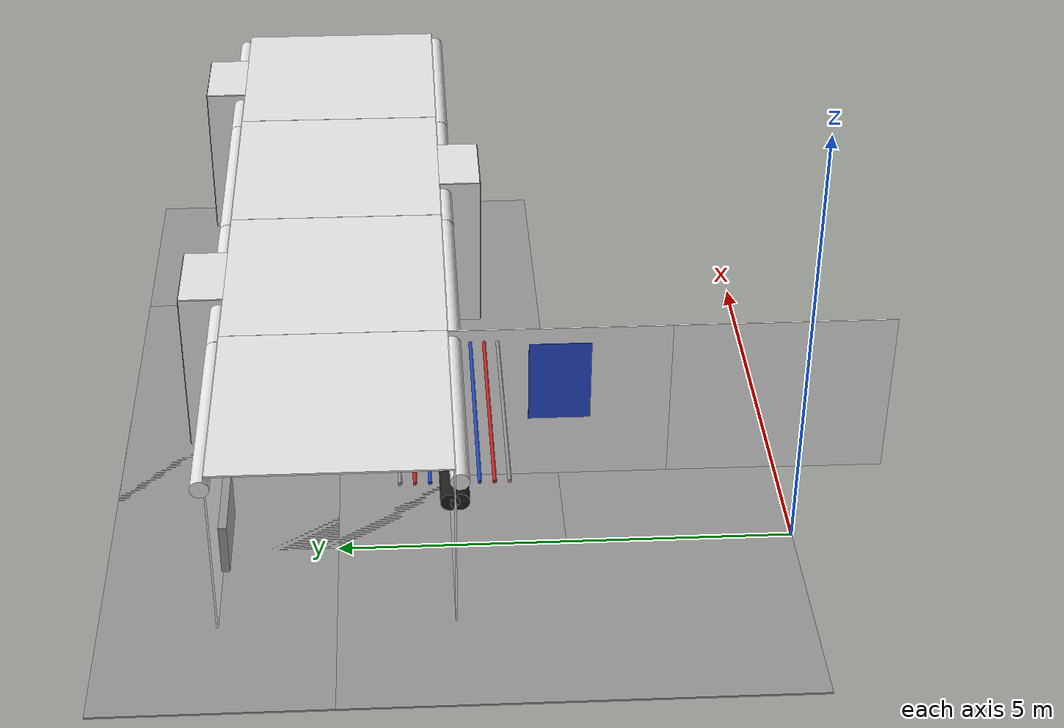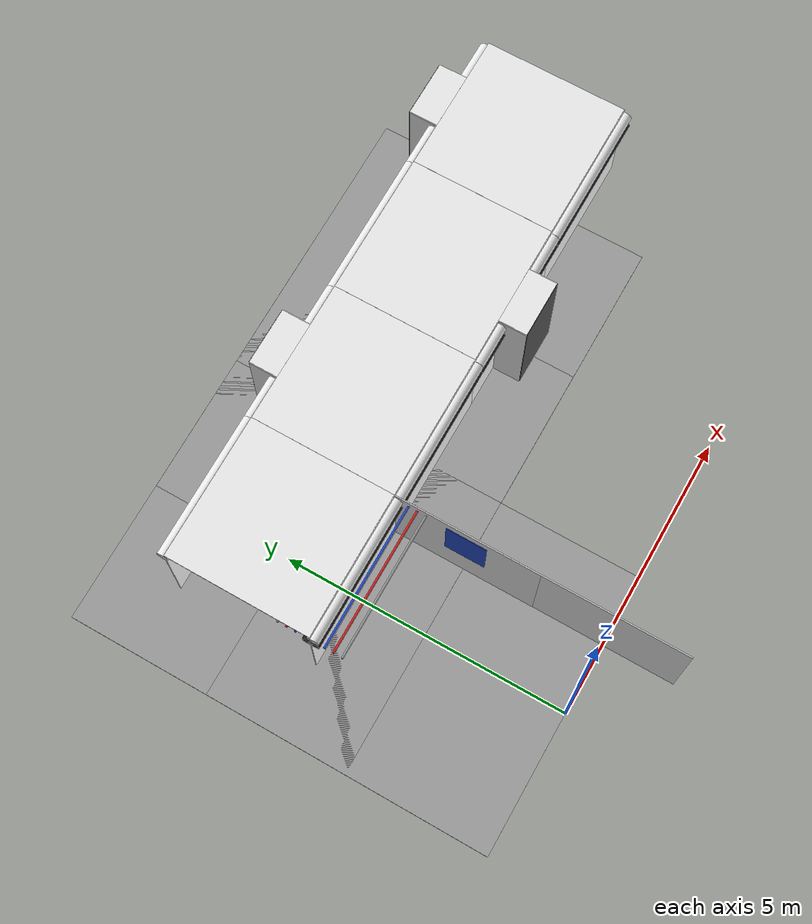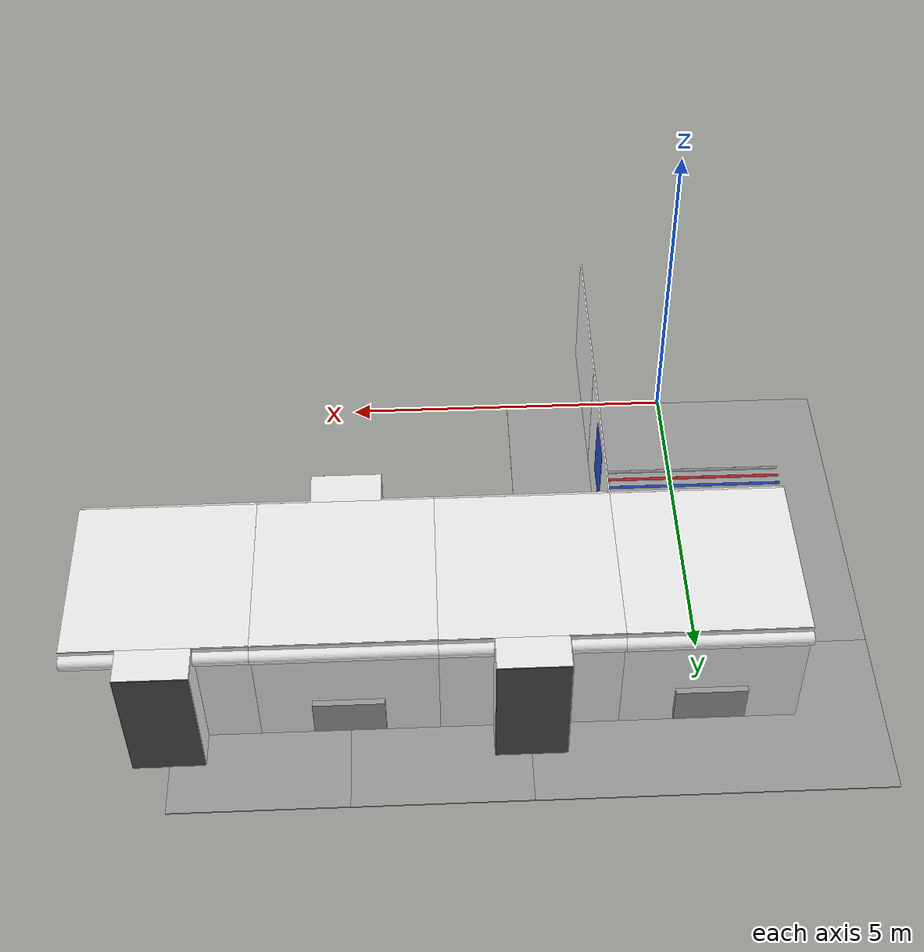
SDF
<sdf version="1.6">
 <world name="default">
  <model name="wall_right_0_0_0_0">
   <static>1</static>
   <pose>1.25 0.0 1.0 0.0 0.0 1.57</pose>
   <link name="link">
    <collision name="collision"><geometry><box><size>2.5 0.02 2.0</size></box></geometry></collision>
    <visual name="visual">
     <material>
      <script><name>Gazebo/White</name><uri>file://media/materials/scripts/gazebo.material</uri></script>
     </material>
     <geometry><box><size>2.5 0.02 2.0</size></box></geometry>
    </visual>
   </link>
  </model>
  <model name="wall_right_0_1_0_3">
   <static>1</static>
   <pose>1.25 2.5 1.0 0.0 0.0 1.57</pose>
   <link name="link">
    <collision name="collision"><geometry><box><size>2.5 0.02 2.0</size></box></geometry></collision>
    <visual name="visual">
     <material>
      <script><name>Gazebo/White</name><uri>file://media/materials/scripts/gazebo.material</uri></script>
     </material>
     <geometry><box><size>2.5 0.02 2.0</size></box></geometry>
    </visual>
   </link>
  </model>
  <model name="black_pipe_right_1_0_1_0_3">
   <static>1</static>
   <pose>0.0 2.5 1.84 0.0 0.0 1.57</pose>
   <link name="link_0">
    <visual name="visual">
     <pose>1.3 0 -0.25 1.57 0 0</pose>
     <geometry><cylinder><radius>0.1</radius><length>2.5</length></cylinder></geometry>
     <material>
      <script><uri>file://media/materials/scripts/gazebo.material</uri><name>Gazebo/Black</name></script>
     </material>
    </visual>
    <collision name="collision">
     <pose>1.3 0 -0.25 1.57 0 0</pose>
     <geometry><cylinder><radius>0.1</radius><length>2.5</length></cylinder></geometry>
    </collision>
   </link>
  </model>
  <model name="grey_pipe_right_1_0_1_0_3">
   <static>1</static>
   <pose>0.0 2.5 1.84 0.0 0.0 1.57</pose>
   <link name="link_0">
    <visual name="visual">
     <pose>0.7 0 0 1.57 0 0</pose>
     <geometry><cylinder><radius>0.02</radius><length>2.5</length></cylinder></geometry>
     <material>
      <script><uri>file://media/materials/scripts/gazebo.material</uri><name>Gazebo/Grey</name></script>
     </material>
    </visual>
    <collision name="collision">
     <pose>0.7 0 0 1.57 0 0</pose>
     <geometry><cylinder><radius>0.02</radius><length>2.5</length></cylinder></geometry>
    </collision>
   </link>
  </model>
  <model name="red_pipe_right_1_0_1_0_3">
   <static>1</static>
   <pose>0.0 2.5 1.84 0.0 0.0 1.57</pose>
   <link name="link_0">
    <visual name="visual">
     <pose>0.85 0 0 1.57 0 0</pose>
     <geometry><cylinder><radius>0.02</radius><length>2.5</length></cylinder></geometry>
     <material>
      <script><uri>file://media/materials/scripts/gazebo.material</uri><name>Gazebo/Red</name></script>
     </material>
    </visual>
    <collision name="collision">
     <pose>0.85 0 0 1.57 0 0</pose>
     <geometry><cylinder><radius>0.02</radius><length>2.5</length></cylinder></geometry>
    </collision>
   </link>
  </model>
  <model name="blue_pipe_right_1_0_1_0_3">
   <static>1</static>
   <pose>0.0 2.5 1.84 0.0 0.0 1.57</pose>
   <link name="link_0">
    <visual name="visual">
     <pose>1 0 0 1.57 0 0</pose>
     <geometry><cylinder><radius>0.02</radius><length>2.5</length></cylinder></geometry>
     <material>
      <script><uri>file://media/materials/scripts/gazebo.material</uri><name>Gazebo/Blue</name></script>
     </material>
    </visual>
    <collision name="collision">
     <pose>1 0 0 1.57 0 0</pose>
     <geometry><cylinder><radius>0.02</radius><length>2.5</length></cylinder></geometry>
    </collision>
   </link>
  </model>
  <model name="panel_0_1_0_3">
   <static>1</static>
   <pose>1.25 2.5 1.3 0.0 0.0 0.0</pose>
   <link name="link">
    <collision name="collision"><geometry><box><size>0.04 0.7 1</size></box></geometry></collision>
    <visual name="visual">
     <material>
      <script><name>Gazebo/Blue</name><uri>file://media/materials/scripts/gazebo.material</uri></script>
     </material>
     <geometry><box><size>0.04 0.7 1</size></box></geometry>
    </visual>
   </link>
  </model>
  <model name="wall_bottom_0_1_0_3">
   <static>1</static>
   <pose>0.0 2.5 0.0 0.0 0.0 0.0</pose>
   <link name="link">
    <collision name="collision"><geometry><box><size>5.0 5.0 0.02</size></box></geometry></collision>
    <visual name="visual">
     <material>
      <script><name>Gazebo/Grey</name><uri>file://media/materials/scripts/gazebo.material</uri></script>
     </material>
     <geometry><box><size>5.0 5.0 0.02</size></box></geometry>
    </visual>
   </link>
  </model>
  <model name="wall_right_0_2_0_1">
   <static>1</static>
   <pose>0.0 3.75 1.0 0.0 0.0 0.0</pose>
   <link name="link">
    <collision name="collision"><geometry><box><size>2.5 0.02 2.0</size></box></geometry></collision>
    <visual name="visual">
     <material>
      <script><name>Gazebo/White</name><uri>file://media/materials/scripts/gazebo.material</uri></script>
     </material>
     <geometry><box><size>2.5 0.02 2.0</size></box></geometry>
    </visual>
   </link>
  </model>
  <model name="wall_left_0_2_0_1">
   <static>1</static>
   <pose>0.0 6.25 1.0 0.0 0.0 0.0</pose>
   <link name="link">
    <collision name="collision"><geometry><box><size>2.5 0.02 2.0</size></box></geometry></collision>
    <visual name="visual">
     <material>
      <script><name>Gazebo/White</name><uri>file://media/materials/scripts/gazebo.material</uri></script>
     </material>
     <geometry><box><size>2.5 0.02 2.0</size></box></geometry>
    </visual>
   </link>
  </model>
  <model name="wall_top_0_2_0_1">
   <static>1</static>
   <pose>0.0 5.0 2.0 1.57 0.0 -1.57</pose>
   <link name="link">
    <collision name="collision"><geometry><box><size>2.5 0.02 2.5</size></box></geometry></collision>
    <visual name="visual">
     <material>
      <script><name>Gazebo/White</name><uri>file://media/materials/scripts/gazebo.material</uri></script>
     </material>
     <geometry><box><size>2.5 0.02 2.5</size></box></geometry>
    </visual>
   </link>
  </model>
  <model name="ceiling_1_0_2_0_1">
   <pose>0.0 5.0 1.7 0.0 0.0 -1.57</pose>
   <link name="link_1">
    <visual name="visual">
     <geometry><box><size>0.8 1 0.1</size></box></geometry>
     <material>
      <script><uri>file://media/materials/scripts/gazebo.material</uri><name>Gazebo/Grey</name></script>
     </material>
    </visual>
    <collision name="collision"><geometry><box><size>0.8 1 0.1</size></box></geometry></collision>
   </link>
   <static>1</static>
  </model>
  <model name="ceiling_1_0_2_2_1">
   <pose>1.0 5.0 1.7 0.0 0.0 -1.57</pose>
   <link name="link_1">
    <visual name="visual">
     <geometry><box><size>0.8 1 0.1</size></box></geometry>
     <material>
      <script><uri>file://media/materials/scripts/gazebo.material</uri><name>Gazebo/Grey</name></script>
     </material>
    </visual>
    <collision name="collision"><geometry><box><size>0.8 1 0.1</size></box></geometry></collision>
   </link>
   <static>1</static>
  </model>
  <model name="white_pipe_left_0_2_0_1">
   <static>1</static>
   <pose>0.0 5.0 1.84 0.0 0.0 -1.57</pose>
   <link name="link_0">
    <visual name="visual">
     <pose>-1.3 0 0 1.57 0 0</pose>
     <geometry><cylinder><radius>0.1</radius><length>2.5</length></cylinder></geometry>
     <material>
      <script><uri>file://media/materials/scripts/gazebo.material</uri><name>Gazebo/White</name></script>
     </material>
    </visual>
    <collision name="collision">
     <pose>-1.3 0 0 1.57 0 0</pose>
     <geometry><cylinder><radius>0.1</radius><length>2.5</length></cylinder></geometry>
    </collision>
   </link>
  </model>
  <model name="white_pipe_right_0_2_0_1">
   <static>1</static>
   <pose>0.0 5.0 1.84 0.0 0.0 -1.57</pose>
   <link name="link_0">
    <visual name="visual">
     <pose>1.3 0 0 1.57 0 0</pose>
     <geometry><cylinder><radius>0.1</radius><length>2.5</length></cylinder></geometry>
     <material>
      <script><uri>file://media/materials/scripts/gazebo.material</uri><name>Gazebo/White</name></script>
     </material>
    </visual>
    <collision name="collision">
     <pose>1.3 0 0 1.57 0 0</pose>
     <geometry><cylinder><radius>0.1</radius><length>2.5</length></cylinder></geometry>
    </collision>
   </link>
  </model>
  <model name="black_pipe_right_0_2_0_1">
   <static>1</static>
   <pose>0.0 5.0 1.84 0.0 0.0 -1.57</pose>
   <link name="link_0">
    <visual name="visual">
     <pose>1.3 0 -0.25 1.57 0 0</pose>
     <geometry><cylinder><radius>0.1</radius><length>2.5</length></cylinder></geometry>
     <material>
      <script><uri>file://media/materials/scripts/gazebo.material</uri><name>Gazebo/Black</name></script>
     </material>
    </visual>
    <collision name="collision">
     <pose>1.3 0 -0.25 1.57 0 0</pose>
     <geometry><cylinder><radius>0.1</radius><length>2.5</length></cylinder></geometry>
    </collision>
   </link>
  </model>
  <model name="grey_pipe_right_0_2_0_1">
   <static>1</static>
   <pose>0.0 5.0 1.84 0.0 0.0 -1.57</pose>
   <link name="link_0">
    <visual name="visual">
     <pose>0.7 0 0 1.57 0 0</pose>
     <geometry><cylinder><radius>0.02</radius><length>2.5</length></cylinder></geometry>
     <material>
      <script><uri>file://media/materials/scripts/gazebo.material</uri><name>Gazebo/Grey</name></script>
     </material>
    </visual>
    <collision name="collision">
     <pose>0.7 0 0 1.57 0 0</pose>
     <geometry><cylinder><radius>0.02</radius><length>2.5</length></cylinder></geometry>
    </collision>
   </link>
  </model>
  <model name="red_pipe_right_0_2_0_1">
   <static>1</static>
   <pose>0.0 5.0 1.84 0.0 0.0 -1.57</pose>
   <link name="link_0">
    <visual name="visual">
     <pose>0.85 0 0 1.57 0 0</pose>
     <geometry><cylinder><radius>0.02</radius><length>2.5</length></cylinder></geometry>
     <material>
      <script><uri>file://media/materials/scripts/gazebo.material</uri><name>Gazebo/Red</name></script>
     </material>
    </visual>
    <collision name="collision">
     <pose>0.85 0 0 1.57 0 0</pose>
     <geometry><cylinder><radius>0.02</radius><length>2.5</length></cylinder></geometry>
    </collision>
   </link>
  </model>
  <model name="blue_pipe_right_0_2_0_1">
   <static>1</static>
   <pose>0.0 5.0 1.84 0.0 0.0 -1.57</pose>
   <link name="link_0">
    <visual name="visual">
     <pose>1 0 0 1.57 0 0</pose>
     <geometry><cylinder><radius>0.02</radius><length>2.5</length></cylinder></geometry>
     <material>
      <script><uri>file://media/materials/scripts/gazebo.material</uri><name>Gazebo/Blue</name></script>
     </material>
    </visual>
    <collision name="collision">
     <pose>1 0 0 1.57 0 0</pose>
     <geometry><cylinder><radius>0.02</radius><length>2.5</length></cylinder></geometry>
    </collision>
   </link>
  </model>
  <model name="wall_bottom_0_2_0_1">
   <static>1</static>
   <pose>0.0 5.0 0.0 0.0 0.0 -1.57</pose>
   <link name="link">
    <collision name="collision"><geometry><box><size>5.0 5.0 0.02</size></box></geometry></collision>
    <visual name="visual">
     <material>
      <script><name>Gazebo/Grey</name><uri>file://media/materials/scripts/gazebo.material</uri></script>
     </material>
     <geometry><box><size>5.0 5.0 0.02</size></box></geometry>
    </visual>
   </link>
  </model>
  <model name="panel_0_2_0_1">
   <static>1</static>
   <pose>0.0 6.25 0.44 0.0 0.0 -1.57</pose>
   <link name="link">
    <collision name="collision"><geometry><box><size>0.2 1 0.6</size></box></geometry></collision>
    <visual name="visual">
     <material>
      <script><name>Gazebo/Grey</name><uri>file://media/materials/scripts/gazebo.material</uri></script>
     </material>
     <geometry><box><size>0.2 1 0.6</size></box></geometry>
    </visual>
   </link>
  </model>
  <model name="panel_0_2_1_1">
   <static>1</static>
   <pose>0.0 3.75 1.3 0.0 0.0 -1.57</pose>
   <link name="link">
    <collision name="collision"><geometry><box><size>0.04 0.7 1</size></box></geometry></collision>
    <visual name="visual">
     <material>
      <script><name>Gazebo/Blue</name><uri>file://media/materials/scripts/gazebo.material</uri></script>
     </material>
     <geometry><box><size>0.04 0.7 1</size></box></geometry>
    </visual>
   </link>
  </model>
  <model name="wall_right_1_2_0_1">
   <static>1</static>
   <pose>2.5 3.75 1.0 0.0 0.0 0.0</pose>
   <link name="link">
    <collision name="collision"><geometry><box><size>2.5 0.02 2.0</size></box></geometry></collision>
    <visual name="visual">
     <material>
      <script><name>Gazebo/White</name><uri>file://media/materials/scripts/gazebo.material</uri></script>
     </material>
     <geometry><box><size>2.5 0.02 2.0</size></box></geometry>
    </visual>
   </link>
  </model>
  <model name="wall_top_1_2_0_1">
   <static>1</static>
   <pose>2.5 5.0 2.0 1.57 0.0 -1.57</pose>
   <link name="link">
    <collision name="collision"><geometry><box><size>2.5 0.02 2.5</size></box></geometry></collision>
    <visual name="visual">
     <material>
      <script><name>Gazebo/White</name><uri>file://media/materials/scripts/gazebo.material</uri></script>
     </material>
     <geometry><box><size>2.5 0.02 2.5</size></box></geometry>
    </visual>
   </link>
  </model>
  <model name="ceiling_1_1_2_0_1">
   <pose>2.5 5.0 1.7 0.0 0.0 -1.57</pose>
   <link name="link_1">
    <visual name="visual">
     <geometry><box><size>0.8 1 0.1</size></box></geometry>
     <material>
      <script><uri>file://media/materials/scripts/gazebo.material</uri><name>Gazebo/Grey</name></script>
     </material>
    </visual>
    <collision name="collision"><geometry><box><size>0.8 1 0.1</size></box></geometry></collision>
   </link>
   <static>1</static>
  </model>
  <model name="ceiling_1_1_2_1_1">
   <pose>1.5 5.0 1.7 0.0 0.0 -1.57</pose>
   <link name="link_1">
    <visual name="visual">
     <geometry><box><size>0.8 1 0.1</size></box></geometry>
     <material>
      <script><uri>file://media/materials/scripts/gazebo.material</uri><name>Gazebo/Grey</name></script>
     </material>
    </visual>
    <collision name="collision"><geometry><box><size>0.8 1 0.1</size></box></geometry></collision>
   </link>
   <static>1</static>
  </model>
  <model name="ceiling_1_1_2_2_1">
   <pose>3.5 5.0 1.7 0.0 0.0 -1.57</pose>
   <link name="link_1">
    <visual name="visual">
     <geometry><box><size>0.8 1 0.1</size></box></geometry>
     <material>
      <script><uri>file://media/materials/scripts/gazebo.material</uri><name>Gazebo/Grey</name></script>
     </material>
    </visual>
    <collision name="collision"><geometry><box><size>0.8 1 0.1</size></box></geometry></collision>
   </link>
   <static>1</static>
  </model>
  <model name="white_pipe_left_1_2_0_1">
   <static>1</static>
   <pose>2.5 5.0 1.84 0.0 0.0 -1.57</pose>
   <link name="link_0">
    <visual name="visual">
     <pose>-1.3 0 0 1.57 0 0</pose>
     <geometry><cylinder><radius>0.1</radius><length>2.5</length></cylinder></geometry>
     <material>
      <script><uri>file://media/materials/scripts/gazebo.material</uri><name>Gazebo/White</name></script>
     </material>
    </visual>
    <collision name="collision">
     <pose>-1.3 0 0 1.57 0 0</pose>
     <geometry><cylinder><radius>0.1</radius><length>2.5</length></cylinder></geometry>
    </collision>
   </link>
  </model>
  <model name="white_pipe_right_1_2_0_1">
   <static>1</static>
   <pose>2.5 5.0 1.84 0.0 0.0 -1.57</pose>
   <link name="link_0">
    <visual name="visual">
     <pose>1.3 0 0 1.57 0 0</pose>
     <geometry><cylinder><radius>0.1</radius><length>2.5</length></cylinder></geometry>
     <material>
      <script><uri>file://media/materials/scripts/gazebo.material</uri><name>Gazebo/White</name></script>
     </material>
    </visual>
    <collision name="collision">
     <pose>1.3 0 0 1.57 0 0</pose>
     <geometry><cylinder><radius>0.1</radius><length>2.5</length></cylinder></geometry>
    </collision>
   </link>
  </model>
  <model name="black_pipe_right_1_2_0_1">
   <static>1</static>
   <pose>2.5 5.0 1.84 0.0 0.0 -1.57</pose>
   <link name="link_0">
    <visual name="visual">
     <pose>1.3 0 -0.25 1.57 0 0</pose>
     <geometry><cylinder><radius>0.1</radius><length>2.5</length></cylinder></geometry>
     <material>
      <script><uri>file://media/materials/scripts/gazebo.material</uri><name>Gazebo/Black</name></script>
     </material>
    </visual>
    <collision name="collision">
     <pose>1.3 0 -0.25 1.57 0 0</pose>
     <geometry><cylinder><radius>0.1</radius><length>2.5</length></cylinder></geometry>
    </collision>
   </link>
  </model>
  <model name="grey_pipe_right_1_2_0_1">
   <static>1</static>
   <pose>2.5 5.0 1.84 0.0 0.0 -1.57</pose>
   <link name="link_0">
    <visual name="visual">
     <pose>0.7 0 0 1.57 0 0</pose>
     <geometry><cylinder><radius>0.02</radius><length>2.5</length></cylinder></geometry>
     <material>
      <script><uri>file://media/materials/scripts/gazebo.material</uri><name>Gazebo/Grey</name></script>
     </material>
    </visual>
    <collision name="collision">
     <pose>0.7 0 0 1.57 0 0</pose>
     <geometry><cylinder><radius>0.02</radius><length>2.5</length></cylinder></geometry>
    </collision>
   </link>
  </model>
  <model name="red_pipe_right_1_2_0_1">
   <static>1</static>
   <pose>2.5 5.0 1.84 0.0 0.0 -1.57</pose>
   <link name="link_0">
    <visual name="visual">
     <pose>0.85 0 0 1.57 0 0</pose>
     <geometry><cylinder><radius>0.02</radius><length>2.5</length></cylinder></geometry>
     <material>
      <script><uri>file://media/materials/scripts/gazebo.material</uri><name>Gazebo/Red</name></script>
     </material>
    </visual>
    <collision name="collision">
     <pose>0.85 0 0 1.57 0 0</pose>
     <geometry><cylinder><radius>0.02</radius><length>2.5</length></cylinder></geometry>
    </collision>
   </link>
  </model>
  <model name="blue_pipe_right_1_2_0_1">
   <static>1</static>
   <pose>2.5 5.0 1.84 0.0 0.0 -1.57</pose>
   <link name="link_0">
    <visual name="visual">
     <pose>1 0 0 1.57 0 0</pose>
     <geometry><cylinder><radius>0.02</radius><length>2.5</length></cylinder></geometry>
     <material>
      <script><uri>file://media/materials/scripts/gazebo.material</uri><name>Gazebo/Blue</name></script>
     </material>
    </visual>
    <collision name="collision">
     <pose>1 0 0 1.57 0 0</pose>
     <geometry><cylinder><radius>0.02</radius><length>2.5</length></cylinder></geometry>
    </collision>
   </link>
  </model>
  <model name="wall_left_front_left_1_2_0_1">
   <static>1</static>
   <pose>3.375 6.25 1.0 0.0 0.0 0.0</pose>
   <link name="link">
    <collision name="collision"><geometry><box><size>0.75 0.02 2.0</size></box></geometry></collision>
    <visual name="visual">
     <material>
      <script><name>Gazebo/White</name><uri>file://media/materials/scripts/gazebo.material</uri></script>
     </material>
     <geometry><box><size>0.75 0.02 2.0</size></box></geometry>
    </visual>
   </link>
  </model>
  <model name="wall_left_front_right_1_2_0_1">
   <static>1</static>
   <pose>1.625 6.25 1.0 0.0 0.0 0.0</pose>
   <link name="link">
    <collision name="collision"><geometry><box><size>0.75 0.02 2.0</size></box></geometry></collision>
    <visual name="visual">
     <material>
      <script><name>Gazebo/White</name><uri>file://media/materials/scripts/gazebo.material</uri></script>
     </material>
     <geometry><box><size>0.75 0.02 2.0</size></box></geometry>
    </visual>
   </link>
  </model>
  <model name="wall_left_front_up_1_2_0_1">
   <static>1</static>
   <pose>2.5 6.25 2.0 0.0 0.0 0.0</pose>
   <link name="link">
    <collision name="collision"><geometry><box><size>1.0 0.02 0.001</size></box></geometry></collision>
    <visual name="visual">
     <material>
      <script><name>Gazebo/White</name><uri>file://media/materials/scripts/gazebo.material</uri></script>
     </material>
     <geometry><box><size>1.0 0.02 0.001</size></box></geometry>
    </visual>
   </link>
  </model>
  <model name="wall_left_inside_back_1_2_0_1">
   <static>1</static>
   <pose>2.5 6.75 1.0 0.0 0.0 0.0</pose>
   <link name="link">
    <collision name="collision"><geometry><box><size>1 0.02 2</size></box></geometry></collision>
    <visual name="visual">
     <material>
      <script><name>Gazebo/DarkGrey</name><uri>file://media/materials/scripts/gazebo.material</uri></script>
     </material>
     <geometry><box><size>1 0.02 2</size></box></geometry>
    </visual>
   </link>
  </model>
  <model name="wall_left_inside_left_1_2_0_1">
   <static>1</static>
   <pose>3.0 6.5 1.0 0.0 0.0 -1.57</pose>
   <link name="link">
    <collision name="collision"><geometry><box><size>0.5 0.02 2</size></box></geometry></collision>
    <visual name="visual">
     <material>
      <script><name>Gazebo/White</name><uri>file://media/materials/scripts/gazebo.material</uri></script>
     </material>
     <geometry><box><size>0.5 0.02 2</size></box></geometry>
    </visual>
   </link>
  </model>
  <model name="wall_left_inside_right_1_2_0_1">
   <static>1</static>
   <pose>2.0 6.5 1.0 0.0 0.0 -1.57</pose>
   <link name="link">
    <collision name="collision"><geometry><box><size>0.5 0.02 2</size></box></geometry></collision>
    <visual name="visual">
     <material>
      <script><name>Gazebo/White</name><uri>file://media/materials/scripts/gazebo.material</uri></script>
     </material>
     <geometry><box><size>0.5 0.02 2</size></box></geometry>
    </visual>
   </link>
  </model>
  <model name="wall_left_inside_top_1_2_0_1">
   <static>1</static>
   <pose>2.5 6.5 2.0 1.57 0.0 0.0</pose>
   <link name="link">
    <collision name="collision"><geometry><box><size>1 0.02 0.5</size></box></geometry></collision>
    <visual name="visual">
     <material>
      <script><name>Gazebo/White</name><uri>file://media/materials/scripts/gazebo.material</uri></script>
     </material>
     <geometry><box><size>1 0.02 0.5</size></box></geometry>
    </visual>
   </link>
  </model>
  <model name="wall_bottom_1_2_0_1">
   <static>1</static>
   <pose>2.5 5.0 0.0 0.0 0.0 -1.57</pose>
   <link name="link">
    <collision name="collision"><geometry><box><size>5.0 5.0 0.02</size></box></geometry></collision>
    <visual name="visual">
     <material>
      <script><name>Gazebo/Grey</name><uri>file://media/materials/scripts/gazebo.material</uri></script>
     </material>
     <geometry><box><size>5.0 5.0 0.02</size></box></geometry>
    </visual>
   </link>
  </model>
  <model name="wall_left_2_2_0_1">
   <static>1</static>
   <pose>5.0 6.25 1.0 0.0 0.0 0.0</pose>
   <link name="link">
    <collision name="collision"><geometry><box><size>2.5 0.02 2.0</size></box></geometry></collision>
    <visual name="visual">
     <material>
      <script><name>Gazebo/White</name><uri>file://media/materials/scripts/gazebo.material</uri></script>
     </material>
     <geometry><box><size>2.5 0.02 2.0</size></box></geometry>
    </visual>
   </link>
  </model>
  <model name="wall_top_2_2_0_1">
   <static>1</static>
   <pose>5.0 5.0 2.0 1.57 0.0 -1.57</pose>
   <link name="link">
    <collision name="collision"><geometry><box><size>2.5 0.02 2.5</size></box></geometry></collision>
    <visual name="visual">
     <material>
      <script><name>Gazebo/White</name><uri>file://media/materials/scripts/gazebo.material</uri></script>
     </material>
     <geometry><box><size>2.5 0.02 2.5</size></box></geometry>
    </visual>
   </link>
  </model>
  <model name="ceiling_1_2_2_0_1">
   <pose>5.0 5.0 1.7 0.0 0.0 -1.57</pose>
   <link name="link_1">
    <visual name="visual">
     <geometry><box><size>0.8 1 0.1</size></box></geometry>
     <material>
      <script><uri>file://media/materials/scripts/gazebo.material</uri><name>Gazebo/Grey</name></script>
     </material>
    </visual>
    <collision name="collision"><geometry><box><size>0.8 1 0.1</size></box></geometry></collision>
   </link>
   <static>1</static>
  </model>
  <model name="ceiling_1_2_2_1_1">
   <pose>4.0 5.0 1.7 0.0 0.0 -1.57</pose>
   <link name="link_1">
    <visual name="visual">
     <geometry><box><size>0.8 1 0.1</size></box></geometry>
     <material>
      <script><uri>file://media/materials/scripts/gazebo.material</uri><name>Gazebo/Grey</name></script>
     </material>
    </visual>
    <collision name="collision"><geometry><box><size>0.8 1 0.1</size></box></geometry></collision>
   </link>
   <static>1</static>
  </model>
  <model name="ceiling_1_2_2_2_1">
   <pose>6.0 5.0 1.7 0.0 0.0 -1.57</pose>
   <link name="link_1">
    <visual name="visual">
     <geometry><box><size>0.8 1 0.1</size></box></geometry>
     <material>
      <script><uri>file://media/materials/scripts/gazebo.material</uri><name>Gazebo/Grey</name></script>
     </material>
    </visual>
    <collision name="collision"><geometry><box><size>0.8 1 0.1</size></box></geometry></collision>
   </link>
   <static>1</static>
  </model>
  <model name="white_pipe_left_2_2_0_1">
   <static>1</static>
   <pose>5.0 5.0 1.84 0.0 0.0 -1.57</pose>
   <link name="link_0">
    <visual name="visual">
     <pose>-1.3 0 0 1.57 0 0</pose>
     <geometry><cylinder><radius>0.1</radius><length>2.5</length></cylinder></geometry>
     <material>
      <script><uri>file://media/materials/scripts/gazebo.material</uri><name>Gazebo/White</name></script>
     </material>
    </visual>
    <collision name="collision">
     <pose>-1.3 0 0 1.57 0 0</pose>
     <geometry><cylinder><radius>0.1</radius><length>2.5</length></cylinder></geometry>
    </collision>
   </link>
  </model>
  <model name="white_pipe_right_2_2_0_1">
   <static>1</static>
   <pose>5.0 5.0 1.84 0.0 0.0 -1.57</pose>
   <link name="link_0">
    <visual name="visual">
     <pose>1.3 0 0 1.57 0 0</pose>
     <geometry><cylinder><radius>0.1</radius><length>2.5</length></cylinder></geometry>
     <material>
      <script><uri>file://media/materials/scripts/gazebo.material</uri><name>Gazebo/White</name></script>
     </material>
    </visual>
    <collision name="collision">
     <pose>1.3 0 0 1.57 0 0</pose>
     <geometry><cylinder><radius>0.1</radius><length>2.5</length></cylinder></geometry>
    </collision>
   </link>
  </model>
  <model name="black_pipe_right_2_2_0_1">
   <static>1</static>
   <pose>5.0 5.0 1.84 0.0 0.0 -1.57</pose>
   <link name="link_0">
    <visual name="visual">
     <pose>1.3 0 -0.25 1.57 0 0</pose>
     <geometry><cylinder><radius>0.1</radius><length>2.5</length></cylinder></geometry>
     <material>
      <script><uri>file://media/materials/scripts/gazebo.material</uri><name>Gazebo/Black</name></script>
     </material>
    </visual>
    <collision name="collision">
     <pose>1.3 0 -0.25 1.57 0 0</pose>
     <geometry><cylinder><radius>0.1</radius><length>2.5</length></cylinder></geometry>
    </collision>
   </link>
  </model>
  <model name="grey_pipe_right_2_2_0_1">
   <static>1</static>
   <pose>5.0 5.0 1.84 0.0 0.0 -1.57</pose>
   <link name="link_0">
    <visual name="visual">
     <pose>0.7 0 0 1.57 0 0</pose>
     <geometry><cylinder><radius>0.02</radius><length>2.5</length></cylinder></geometry>
     <material>
      <script><uri>file://media/materials/scripts/gazebo.material</uri><name>Gazebo/Grey</name></script>
     </material>
    </visual>
    <collision name="collision">
     <pose>0.7 0 0 1.57 0 0</pose>
     <geometry><cylinder><radius>0.02</radius><length>2.5</length></cylinder></geometry>
    </collision>
   </link>
  </model>
  <model name="red_pipe_right_2_2_0_1">
   <static>1</static>
   <pose>5.0 5.0 1.84 0.0 0.0 -1.57</pose>
   <link name="link_0">
    <visual name="visual">
     <pose>0.85 0 0 1.57 0 0</pose>
     <geometry><cylinder><radius>0.02</radius><length>2.5</length></cylinder></geometry>
     <material>
      <script><uri>file://media/materials/scripts/gazebo.material</uri><name>Gazebo/Red</name></script>
     </material>
    </visual>
    <collision name="collision">
     <pose>0.85 0 0 1.57 0 0</pose>
     <geometry><cylinder><radius>0.02</radius><length>2.5</length></cylinder></geometry>
    </collision>
   </link>
  </model>
  <model name="blue_pipe_right_2_2_0_1">
   <static>1</static>
   <pose>5.0 5.0 1.84 0.0 0.0 -1.57</pose>
   <link name="link_0">
    <visual name="visual">
     <pose>1 0 0 1.57 0 0</pose>
     <geometry><cylinder><radius>0.02</radius><length>2.5</length></cylinder></geometry>
     <material>
      <script><uri>file://media/materials/scripts/gazebo.material</uri><name>Gazebo/Blue</name></script>
     </material>
    </visual>
    <collision name="collision">
     <pose>1 0 0 1.57 0 0</pose>
     <geometry><cylinder><radius>0.02</radius><length>2.5</length></cylinder></geometry>
    </collision>
   </link>
  </model>
  <model name="wall_bottom_2_2_0_1">
   <static>1</static>
   <pose>5.0 5.0 0.0 0.0 0.0 -1.57</pose>
   <link name="link">
    <collision name="collision"><geometry><box><size>5.0 5.0 0.02</size></box></geometry></collision>
    <visual name="visual">
     <material>
      <script><name>Gazebo/Grey</name><uri>file://media/materials/scripts/gazebo.material</uri></script>
     </material>
     <geometry><box><size>5.0 5.0 0.02</size></box></geometry>
    </visual>
   </link>
  </model>
  <model name="wall_right_front_left_2_2_0_1">
   <static>1</static>
   <pose>5.875 3.75 1.0 0.0 0.0 0.0</pose>
   <link name="link">
    <collision name="collision"><geometry><box><size>0.75 0.02 2.0</size></box></geometry></collision>
    <visual name="visual">
     <material>
      <script><name>Gazebo/White</name><uri>file://media/materials/scripts/gazebo.material</uri></script>
     </material>
     <geometry><box><size>0.75 0.02 2.0</size></box></geometry>
    </visual>
   </link>
  </model>
  <model name="wall_right_front_right_2_2_0_1">
   <static>1</static>
   <pose>4.125 3.75 1.0 0.0 0.0 0.0</pose>
   <link name="link">
    <collision name="collision"><geometry><box><size>0.75 0.02 2.0</size></box></geometry></collision>
    <visual name="visual">
     <material>
      <script><name>Gazebo/White</name><uri>file://media/materials/scripts/gazebo.material</uri></script>
     </material>
     <geometry><box><size>0.75 0.02 2.0</size></box></geometry>
    </visual>
   </link>
  </model>
  <model name="wall_right_front_up_2_2_0_1">
   <static>1</static>
   <pose>5.0 3.75 2.0 0.0 0.0 0.0</pose>
   <link name="link">
    <collision name="collision"><geometry><box><size>1.0 0.02 0.001</size></box></geometry></collision>
    <visual name="visual">
     <material>
      <script><name>Gazebo/White</name><uri>file://media/materials/scripts/gazebo.material</uri></script>
     </material>
     <geometry><box><size>1.0 0.02 0.001</size></box></geometry>
    </visual>
   </link>
  </model>
  <model name="wall_right_inside_back_2_2_0_1">
   <static>1</static>
   <pose>5.0 3.25 1.0 0.0 0.0 0.0</pose>
   <link name="link">
    <collision name="collision"><geometry><box><size>1 0.02 2</size></box></geometry></collision>
    <visual name="visual">
     <material>
      <script><name>Gazebo/DarkGrey</name><uri>file://media/materials/scripts/gazebo.material</uri></script>
     </material>
     <geometry><box><size>1 0.02 2</size></box></geometry>
    </visual>
   </link>
  </model>
  <model name="wall_right_inside_left_2_2_0_1">
   <static>1</static>
   <pose>5.5 3.5 1.0 0.0 0.0 -1.57</pose>
   <link name="link">
    <collision name="collision"><geometry><box><size>0.5 0.02 2</size></box></geometry></collision>
    <visual name="visual">
     <material>
      <script><name>Gazebo/White</name><uri>file://media/materials/scripts/gazebo.material</uri></script>
     </material>
     <geometry><box><size>0.5 0.02 2</size></box></geometry>
    </visual>
   </link>
  </model>
  <model name="wall_right_inside_right_2_2_0_1">
   <static>1</static>
   <pose>4.5 3.5 1.0 0.0 0.0 -1.57</pose>
   <link name="link">
    <collision name="collision"><geometry><box><size>0.5 0.02 2</size></box></geometry></collision>
    <visual name="visual">
     <material>
      <script><name>Gazebo/White</name><uri>file://media/materials/scripts/gazebo.material</uri></script>
     </material>
     <geometry><box><size>0.5 0.02 2</size></box></geometry>
    </visual>
   </link>
  </model>
  <model name="wall_right_inside_top_2_2_0_1">
   <static>1</static>
   <pose>5.0 3.5 2.0 1.57 0.0 0.0</pose>
   <link name="link">
    <collision name="collision"><geometry><box><size>1 0.02 0.5</size></box></geometry></collision>
    <visual name="visual">
     <material>
      <script><name>Gazebo/White</name><uri>file://media/materials/scripts/gazebo.material</uri></script>
     </material>
     <geometry><box><size>1 0.02 0.5</size></box></geometry>
    </visual>
   </link>
  </model>
  <model name="panel_2_2_0_1">
   <static>1</static>
   <pose>5.0 6.25 0.44 0.0 0.0 -1.57</pose>
   <link name="link">
    <collision name="collision"><geometry><box><size>0.2 1 0.6</size></box></geometry></collision>
    <visual name="visual">
     <material>
      <script><name>Gazebo/Grey</name><uri>file://media/materials/scripts/gazebo.material</uri></script>
     </material>
     <geometry><box><size>0.2 1 0.6</size></box></geometry>
    </visual>
   </link>
  </model>
  <model name="wall_right_3_2_0_1">
   <static>1</static>
   <pose>7.5 3.75 1.0 0.0 0.0 0.0</pose>
   <link name="link">
    <collision name="collision"><geometry><box><size>2.5 0.02 2.0</size></box></geometry></collision>
    <visual name="visual">
     <material>
      <script><name>Gazebo/White</name><uri>file://media/materials/scripts/gazebo.material</uri></script>
     </material>
     <geometry><box><size>2.5 0.02 2.0</size></box></geometry>
    </visual>
   </link>
  </model>
  <model name="wall_top_3_2_0_1">
   <static>1</static>
   <pose>7.5 5.0 2.0 1.57 0.0 -1.57</pose>
   <link name="link">
    <collision name="collision"><geometry><box><size>2.5 0.02 2.5</size></box></geometry></collision>
    <visual name="visual">
     <material>
      <script><name>Gazebo/White</name><uri>file://media/materials/scripts/gazebo.material</uri></script>
     </material>
     <geometry><box><size>2.5 0.02 2.5</size></box></geometry>
    </visual>
   </link>
  </model>
  <model name="ceiling_1_3_2_0_1">
   <pose>7.5 5.0 1.7 0.0 0.0 -1.57</pose>
   <link name="link_1">
    <visual name="visual">
     <geometry><box><size>0.8 1 0.1</size></box></geometry>
     <material>
      <script><uri>file://media/materials/scripts/gazebo.material</uri><name>Gazebo/Grey</name></script>
     </material>
    </visual>
    <collision name="collision"><geometry><box><size>0.8 1 0.1</size></box></geometry></collision>
   </link>
   <static>1</static>
  </model>
  <model name="ceiling_1_3_2_1_1">
   <pose>6.5 5.0 1.7 0.0 0.0 -1.57</pose>
   <link name="link_1">
    <visual name="visual">
     <geometry><box><size>0.8 1 0.1</size></box></geometry>
     <material>
      <script><uri>file://media/materials/scripts/gazebo.material</uri><name>Gazebo/Grey</name></script>
     </material>
    </visual>
    <collision name="collision"><geometry><box><size>0.8 1 0.1</size></box></geometry></collision>
   </link>
   <static>1</static>
  </model>
  <model name="white_pipe_left_3_2_0_1">
   <static>1</static>
   <pose>7.5 5.0 1.84 0.0 0.0 -1.57</pose>
   <link name="link_0">
    <visual name="visual">
     <pose>-1.3 0 0 1.57 0 0</pose>
     <geometry><cylinder><radius>0.1</radius><length>2.5</length></cylinder></geometry>
     <material>
      <script><uri>file://media/materials/scripts/gazebo.material</uri><name>Gazebo/White</name></script>
     </material>
    </visual>
    <collision name="collision">
     <pose>-1.3 0 0 1.57 0 0</pose>
     <geometry><cylinder><radius>0.1</radius><length>2.5</length></cylinder></geometry>
    </collision>
   </link>
  </model>
  <model name="white_pipe_right_3_2_0_1">
   <static>1</static>
   <pose>7.5 5.0 1.84 0.0 0.0 -1.57</pose>
   <link name="link_0">
    <visual name="visual">
     <pose>1.3 0 0 1.57 0 0</pose>
     <geometry><cylinder><radius>0.1</radius><length>2.5</length></cylinder></geometry>
     <material>
      <script><uri>file://media/materials/scripts/gazebo.material</uri><name>Gazebo/White</name></script>
     </material>
    </visual>
    <collision name="collision">
     <pose>1.3 0 0 1.57 0 0</pose>
     <geometry><cylinder><radius>0.1</radius><length>2.5</length></cylinder></geometry>
    </collision>
   </link>
  </model>
  <model name="black_pipe_right_3_2_0_1">
   <static>1</static>
   <pose>7.5 5.0 1.84 0.0 0.0 -1.57</pose>
   <link name="link_0">
    <visual name="visual">
     <pose>1.3 0 -0.25 1.57 0 0</pose>
     <geometry><cylinder><radius>0.1</radius><length>2.5</length></cylinder></geometry>
     <material>
      <script><uri>file://media/materials/scripts/gazebo.material</uri><name>Gazebo/Black</name></script>
     </material>
    </visual>
    <collision name="collision">
     <pose>1.3 0 -0.25 1.57 0 0</pose>
     <geometry><cylinder><radius>0.1</radius><length>2.5</length></cylinder></geometry>
    </collision>
   </link>
  </model>
  <model name="grey_pipe_right_3_2_0_1">
   <static>1</static>
   <pose>7.5 5.0 1.84 0.0 0.0 -1.57</pose>
   <link name="link_0">
    <visual name="visual">
     <pose>0.7 0 0 1.57 0 0</pose>
     <geometry><cylinder><radius>0.02</radius><length>2.5</length></cylinder></geometry>
     <material>
      <script><uri>file://media/materials/scripts/gazebo.material</uri><name>Gazebo/Grey</name></script>
     </material>
    </visual>
    <collision name="collision">
     <pose>0.7 0 0 1.57 0 0</pose>
     <geometry><cylinder><radius>0.02</radius><length>2.5</length></cylinder></geometry>
    </collision>
   </link>
  </model>
  <model name="red_pipe_right_3_2_0_1">
   <static>1</static>
   <pose>7.5 5.0 1.84 0.0 0.0 -1.57</pose>
   <link name="link_0">
    <visual name="visual">
     <pose>0.85 0 0 1.57 0 0</pose>
     <geometry><cylinder><radius>0.02</radius><length>2.5</length></cylinder></geometry>
     <material>
      <script><uri>file://media/materials/scripts/gazebo.material</uri><name>Gazebo/Red</name></script>
     </material>
    </visual>
    <collision name="collision">
     <pose>0.85 0 0 1.57 0 0</pose>
     <geometry><cylinder><radius>0.02</radius><length>2.5</length></cylinder></geometry>
    </collision>
   </link>
  </model>
  <model name="blue_pipe_right_3_2_0_1">
   <static>1</static>
   <pose>7.5 5.0 1.84 0.0 0.0 -1.57</pose>
   <link name="link_0">
    <visual name="visual">
     <pose>1 0 0 1.57 0 0</pose>
     <geometry><cylinder><radius>0.02</radius><length>2.5</length></cylinder></geometry>
     <material>
      <script><uri>file://media/materials/scripts/gazebo.material</uri><name>Gazebo/Blue</name></script>
     </material>
    </visual>
    <collision name="collision">
     <pose>1 0 0 1.57 0 0</pose>
     <geometry><cylinder><radius>0.02</radius><length>2.5</length></cylinder></geometry>
    </collision>
   </link>
  </model>
  <model name="panel_3_2_0_1">
   <static>1</static>
   <pose>7.5 3.75 1.3 0.0 0.0 -1.57</pose>
   <link name="link">
    <collision name="collision"><geometry><box><size>0.04 0.7 1</size></box></geometry></collision>
    <visual name="visual">
     <material>
      <script><name>Gazebo/Blue</name><uri>file://media/materials/scripts/gazebo.material</uri></script>
     </material>
     <geometry><box><size>0.04 0.7 1</size></box></geometry>
    </visual>
   </link>
  </model>
  <model name="wall_left_front_right_3_2_0_1">
   <static>1</static>
   <pose>6.625 6.25 1.0 0.0 0.0 0.0</pose>
   <link name="link">
    <collision name="collision"><geometry><box><size>0.75 0.02 2.0</size></box></geometry></collision>
    <visual name="visual">
     <material>
      <script><name>Gazebo/White</name><uri>file://media/materials/scripts/gazebo.material</uri></script>
     </material>
     <geometry><box><size>0.75 0.02 2.0</size></box></geometry>
    </visual>
   </link>
  </model>
  <model name="wall_left_front_up_3_2_0_1">
   <static>1</static>
   <pose>7.5 6.25 2.0 0.0 0.0 0.0</pose>
   <link name="link">
    <collision name="collision"><geometry><box><size>1.0 0.02 0.001</size></box></geometry></collision>
    <visual name="visual">
     <material>
      <script><name>Gazebo/White</name><uri>file://media/materials/scripts/gazebo.material</uri></script>
     </material>
     <geometry><box><size>1.0 0.02 0.001</size></box></geometry>
    </visual>
   </link>
  </model>
  <model name="wall_left_inside_back_3_2_0_1">
   <static>1</static>
   <pose>7.5 6.75 1.0 0.0 0.0 0.0</pose>
   <link name="link">
    <collision name="collision"><geometry><box><size>1 0.02 2</size></box></geometry></collision>
    <visual name="visual">
     <material>
      <script><name>Gazebo/DarkGrey</name><uri>file://media/materials/scripts/gazebo.material</uri></script>
     </material>
     <geometry><box><size>1 0.02 2</size></box></geometry>
    </visual>
   </link>
  </model>
  <model name="wall_left_inside_right_3_2_0_1">
   <static>1</static>
   <pose>7.0 6.5 1.0 0.0 0.0 -1.57</pose>
   <link name="link">
    <collision name="collision"><geometry><box><size>0.5 0.02 2</size></box></geometry></collision>
    <visual name="visual">
     <material>
      <script><name>Gazebo/White</name><uri>file://media/materials/scripts/gazebo.material</uri></script>
     </material>
     <geometry><box><size>0.5 0.02 2</size></box></geometry>
    </visual>
   </link>
  </model>
  <model name="wall_left_inside_top_3_2_0_1">
   <static>1</static>
   <pose>7.5 6.5 2.0 1.57 0.0 0.0</pose>
   <link name="link">
    <collision name="collision"><geometry><box><size>1 0.02 0.5</size></box></geometry></collision>
    <visual name="visual">
     <material>
      <script><name>Gazebo/White</name><uri>file://media/materials/scripts/gazebo.material</uri></script>
     </material>
     <geometry><box><size>1 0.02 0.5</size></box></geometry>
    </visual>
   </link>
  </model>
 </world>
</sdf>
